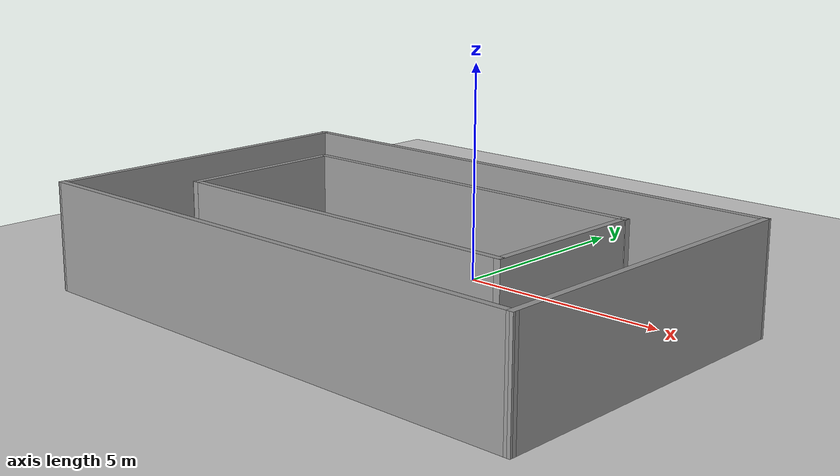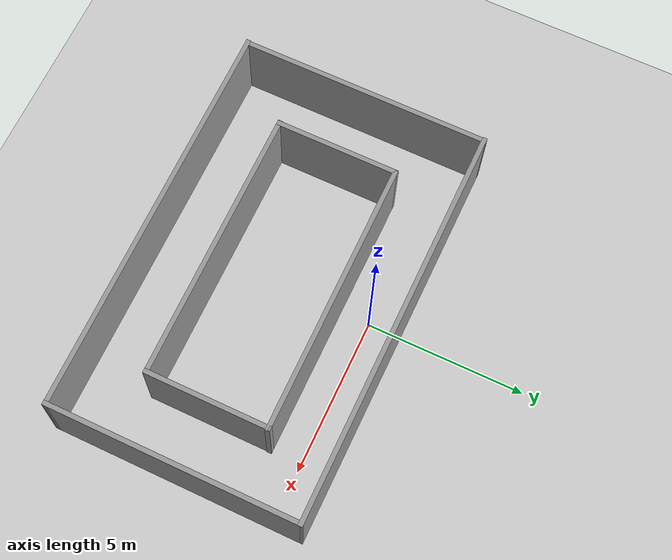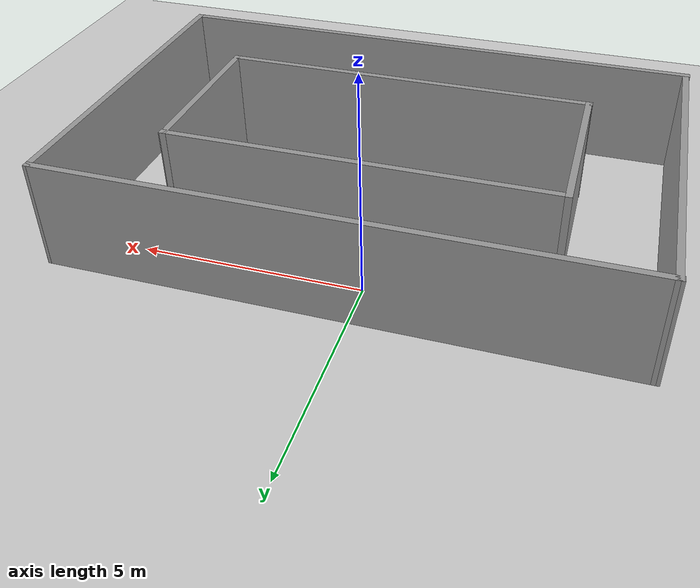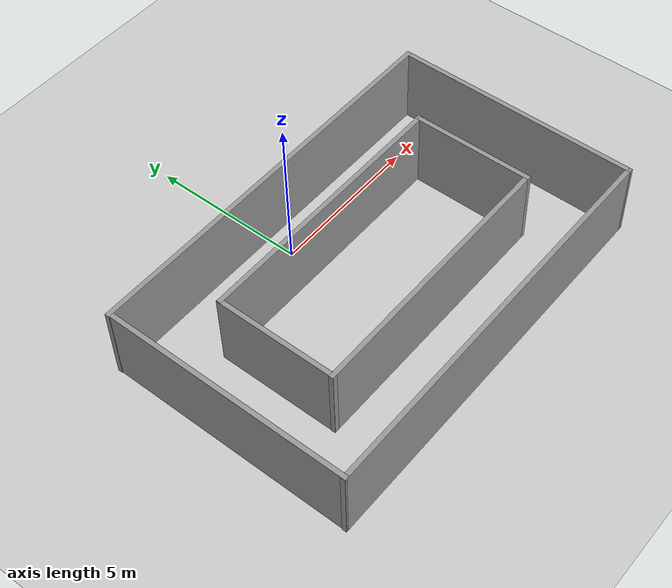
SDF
<sdf version="1.6">
 <world name="default">
  <model name="ground_plane">
   <static>1</static>
   <link name="link">
    <collision name="collision">
     <geometry><plane><normal>0 0 1</normal><size>100 100</size></plane></geometry>
     <surface><friction><ode><mu>100</mu><mu2>50</mu2></ode></friction></surface>
    </collision>
    <visual name="visual">
     <cast_shadows>0</cast_shadows>
     <geometry><plane><normal>0 0 1</normal><size>100 100</size></plane></geometry>
     <material>
      <script><uri>file://media/materials/scripts/gazebo.material</uri><name>Gazebo/Grey</name></script>
     </material>
    </visual>
   </link>
  </model>
  <light name="sun" type="directional">
   <pose>0 0 10 0 -0 0</pose>
   <diffuse>0.8 0.8 0.8 1</diffuse>
   <specular>0.1 0.1 0.1 1</specular>
   <attenuation>
    <range>1000</range>
    <constant>0.9</constant>
    <linear>0.01</linear>
    <quadratic>0.001</quadratic>
   </attenuation>
   <direction>-0.5 0.5 -1</direction>
  </light>
  <gravity>0 0 -9.8</gravity>
  <magnetic_field>6e-06 2.3e-05 -4.2e-05</magnetic_field>
  <atmosphere type="adiabatic"/>
  <physics name="default_physics" default="0" type="ode">
   <max_step_size>0.001</max_step_size>
   <real_time_factor>1</real_time_factor>
   <real_time_update_rate>1000</real_time_update_rate>
  </physics>
  <scene><ambient>0.4 0.4 0.4 1</ambient><background>0.7 0.7 0.7 1</background><shadows>1</shadows></scene>
  <spherical_coordinates>
   <surface_model>EARTH_WGS84</surface_model>
   <latitude_deg>0</latitude_deg>
   <longitude_deg>0</longitude_deg>
   <elevation>0</elevation>
   <heading_deg>0</heading_deg>
  </spherical_coordinates>
  <model name="simpletrack">
   <pose>0.388682 -2.96673 0 0 -0 0</pose>
   <link name="Wall_0">
    <collision name="Wall_0_Collision">
     <geometry><box><size>8.75 0.15 2.5</size></box></geometry>
     <pose>0 0 1.25 0 -0 0</pose>
    </collision>
    <visual name="Wall_0_Visual">
     <pose>0 0 1.25 0 -0 0</pose>
     <geometry><box><size>8.75 0.15 2.5</size></box></geometry>
     <material>
      <script><uri>file://media/materials/scripts/gazebo.material</uri><name>Gazebo/Grey</name></script>
      <ambient>1 1 1 1</ambient>
     </material>
    </visual>
    <pose>0.033307 -1.83852 0 0 -0 0</pose>
   </link>
   <link name="Wall_1">
    <collision name="Wall_1_Collision">
     <geometry><box><size>3.95835 0.15 2.5</size></box></geometry>
     <pose>0 0 1.25 0 -0 0</pose>
    </collision>
    <visual name="Wall_1_Visual">
     <pose>0 0 1.25 0 -0 0</pose>
     <geometry><box><size>3.95835 0.15 2.5</size></box></geometry>
     <material>
      <script><uri>file://media/materials/scripts/gazebo.material</uri><name>Gazebo/Grey</name></script>
      <ambient>1 1 1 1</ambient>
     </material>
    </visual>
    <pose>4.34331 0.065627 0 0 -0 1.5708</pose>
   </link>
   <link name="Wall_2">
    <collision name="Wall_2_Collision">
     <geometry><box><size>8.75 0.15 2.5</size></box></geometry>
     <pose>0 0 1.25 0 -0 0</pose>
    </collision>
    <visual name="Wall_2_Visual">
     <pose>0 0 1.25 0 -0 0</pose>
     <geometry><box><size>8.75 0.15 2.5</size></box></geometry>
     <material>
      <script><uri>file://media/materials/scripts/gazebo.material</uri><name>Gazebo/Grey</name></script>
      <ambient>1 1 1 1</ambient>
     </material>
    </visual>
    <pose>0.063421 1.96978 0 0 -0 3.14159</pose>
   </link>
   <link name="Wall_3">
    <collision name="Wall_3_Collision">
     <geometry><box><size>3.95835 0.15 2.5</size></box></geometry>
     <pose>0 0 1.25 0 -0 0</pose>
    </collision>
    <visual name="Wall_3_Visual">
     <pose>0 0 1.25 0 -0 0</pose>
     <geometry><box><size>3.95835 0.15 2.5</size></box></geometry>
     <material>
      <script><uri>file://media/materials/scripts/gazebo.material</uri><name>Gazebo/Grey</name></script>
      <ambient>1 1 1 1</ambient>
     </material>
    </visual>
    <pose>-4.25669 0.065627 0 0 0 -1.5708</pose>
   </link>
   <link name="Wall_5">
    <collision name="Wall_5_Collision">
     <geometry><box><size>12.8621 0.15 2.5</size></box></geometry>
     <pose>0 0 1.25 0 -0 0</pose>
    </collision>
    <visual name="Wall_5_Visual">
     <pose>0 0 1.25 0 -0 0</pose>
     <geometry><box><size>12.8621 0.15 2.5</size></box></geometry>
     <material>
      <script><uri>file://media/materials/scripts/gazebo.material</uri><name>Gazebo/Grey</name></script>
      <ambient>1 1 1 1</ambient>
     </material>
    </visual>
    <pose>0 3.925 0 0 0 -0.001582</pose>
   </link>
   <link name="Wall_6">
    <collision name="Wall_6_Collision">
     <geometry><box><size>8 0.15 2.5</size></box></geometry>
     <pose>0 0 1.25 0 -0 0</pose>
    </collision>
    <visual name="Wall_6_Visual">
     <pose>0 0 1.25 0 -0 0</pose>
     <geometry><box><size>8 0.15 2.5</size></box></geometry>
     <material>
      <script><uri>file://media/materials/scripts/gazebo.material</uri><name>Gazebo/Grey</name></script>
      <ambient>1 1 1 1</ambient>
     </material>
    </visual>
    <pose>6.35602 -0.010057 0 0 0 -1.5708</pose>
   </link>
   <link name="Wall_7">
    <collision name="Wall_7_Collision">
     <geometry><box><size>12.8621 0.15 2.5</size></box></geometry>
     <pose>0 0 1.25 0 -0 0</pose>
    </collision>
    <visual name="Wall_7_Visual">
     <pose>0 0 1.25 0 -0 0</pose>
     <geometry><box><size>12.8621 0.15 2.5</size></box></geometry>
     <material>
      <script><uri>file://media/materials/scripts/gazebo.material</uri><name>Gazebo/Grey</name></script>
      <ambient>1 1 1 1</ambient>
     </material>
    </visual>
    <pose>0 -3.925 0 0 -0 3.14001</pose>
   </link>
   <link name="Wall_8">
    <collision name="Wall_8_Collision">
     <geometry><box><size>8 0.15 2.5</size></box></geometry>
     <pose>0 0 1.25 0 -0 0</pose>
    </collision>
    <visual name="Wall_8_Visual">
     <pose>0 0 1.25 0 -0 0</pose>
     <geometry><box><size>8 0.15 2.5</size></box></geometry>
     <material>
      <script><uri>file://media/materials/scripts/gazebo.material</uri><name>Gazebo/Grey</name></script>
      <ambient>1 1 1 1</ambient>
     </material>
    </visual>
    <pose>-6.33591 0.010057 0 0 -0 1.5708</pose>
   </link>
   <static>1</static>
  </model>
 </world>
</sdf>
